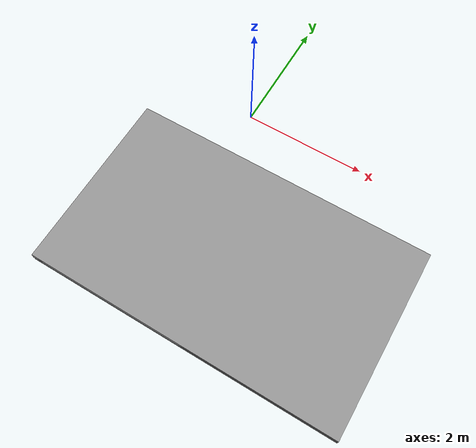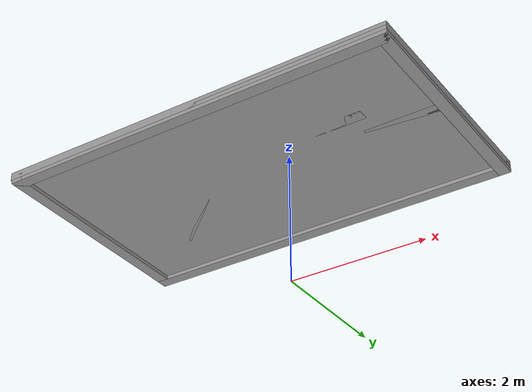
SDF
<?xml version='1.0'?>
<sdf version='1.6'>
  <model name='Untitled'>
    <pose frame=''>1.00628 -2.305 0 0 -0 0</pose>
    <link name='Floor_0'>
      <collision name='Floor_0_Collision'>
        <geometry>
          <box>
            <size>5.01745 3 0.1</size>
          </box>
        </geometry>
        <pose frame=''>0 0 0.05 0 -0 0</pose>
      </collision>
      <visual name='Floor_0_Visual'>
        <pose frame=''>0 0 0.05 0 -0 0</pose>
        <geometry>
          <box>
            <size>5.01745 3 0.1</size>
          </box>
        </geometry>
        <material>
          <script>
            <uri>file://media/materials/scripts/gazebo.material</uri>
            <name>Gazebo/Grey</name>
          </script>
          <ambient>1 1 1 1</ambient>
        </material>
        <meta>
          <layer>1</layer>
        </meta>
      </visual>
      <pose frame=''>0 0 0.05 0 -0 0</pose>
    </link>
    <link name='Wall_10'>
      <collision name='Wall_10_Collision'>
        <geometry>
          <box>
            <size>3 0.15 0.05</size>
          </box>
        </geometry>
        <pose frame=''>0 0 0.025 0 -0 0</pose>
      </collision>
      <visual name='Wall_10_Visual'>
        <pose frame=''>0 0 0.025 0 -0 0</pose>
        <geometry>
          <box>
            <size>3 0.15 0.05</size>
          </box>
        </geometry>
        <material>
          <script>
            <uri>file://media/materials/scripts/gazebo.material</uri>
            <name>Gazebo/Grey</name>
          </script>
          <ambient>0.180392 0.203922 0.211765 1</ambient>
        </material>
        <meta>
          <layer>0</layer>
        </meta>
      </visual>
      <pose frame=''>-2.41628 0 0 0 -0 -1.5708</pose>
    </link>
    <link name='Wall_12'>
      <collision name='Wall_12_Collision'>
        <geometry>
          <box>
            <size>5 0.15 0.05</size>
          </box>
        </geometry>
        <pose frame=''>0 0 0.025 0 -0 0</pose>
      </collision>
      <visual name='Wall_12_Visual'>
        <pose frame=''>0 0 0.025 0 -0 0</pose>
        <geometry>
          <box>
            <size>5 0.15 0.05</size>
          </box>
        </geometry>
        <material>
          <script>
            <uri>file://media/materials/scripts/gazebo.material</uri>
            <name>Gazebo/Grey</name>
          </script>
          <ambient>1 1 1 1</ambient>
        </material>
        <meta>
          <layer>1</layer>
        </meta>
      </visual>
      <pose frame=''>0.008724 1.425 0.05 0 -0 0</pose>
    </link>
    <link name='Wall_13'>
      <collision name='Wall_13_Collision'>
        <geometry>
          <box>
            <size>3 0.15 0.05</size>
          </box>
        </geometry>
        <pose frame=''>0 0 0.025 0 -0 0</pose>
      </collision>
      <visual name='Wall_13_Visual'>
        <pose frame=''>0 0 0.025 0 -0 0</pose>
        <geometry>
          <box>
            <size>3 0.15 0.05</size>
          </box>
        </geometry>
        <material>
          <script>
            <uri>file://media/materials/scripts/gazebo.material</uri>
            <name>Gazebo/Grey</name>
          </script>
          <ambient>1 1 1 1</ambient>
        </material>
        <meta>
          <layer>1</layer>
        </meta>
      </visual>
      <pose frame=''>2.43372 0 0.05 0 -0 -1.5708</pose>
    </link>
    <link name='Wall_14'>
      <collision name='Wall_14_Collision'>
        <geometry>
          <box>
            <size>5 0.15 0.05</size>
          </box>
        </geometry>
        <pose frame=''>0 0 0.025 0 -0 0</pose>
      </collision>
      <visual name='Wall_14_Visual'>
        <pose frame=''>0 0 0.025 0 -0 0</pose>
        <geometry>
          <box>
            <size>5 0.15 0.05</size>
          </box>
        </geometry>
        <material>
          <script>
            <uri>file://media/materials/scripts/gazebo.material</uri>
            <name>Gazebo/Grey</name>
          </script>
          <ambient>1 1 1 1</ambient>
        </material>
        <meta>
          <layer>1</layer>
        </meta>
      </visual>
      <pose frame=''>0.008724 -1.425 0.05 0 -0 3.14159</pose>
    </link>
    <link name='Wall_15'>
      <collision name='Wall_15_Collision'>
        <geometry>
          <box>
            <size>3 0.15 0.05</size>
          </box>
        </geometry>
        <pose frame=''>0 0 0.025 0 -0 0</pose>
      </collision>
      <visual name='Wall_15_Visual'>
        <pose frame=''>0 0 0.025 0 -0 0</pose>
        <geometry>
          <box>
            <size>3 0.15 0.05</size>
          </box>
        </geometry>
        <material>
          <script>
            <uri>file://media/materials/scripts/gazebo.material</uri>
            <name>Gazebo/Grey</name>
          </script>
          <ambient>1 1 1 1</ambient>
        </material>
        <meta>
          <layer>1</layer>
        </meta>
      </visual>
      <pose frame=''>-2.41628 0 0.05 0 -0 -1.5708</pose>
    </link>
    <link name='Wall_16'>
      <collision name='Wall_16_Collision'>
        <geometry>
          <box>
            <size>1.25 0.15 0.02</size>
          </box>
        </geometry>
        <pose frame=''>0 0 0.01 0 -0 0</pose>
      </collision>
      <visual name='Wall_16_Visual'>
        <pose frame=''>0 0 0.01 0 -0 0</pose>
        <geometry>
          <box>
            <size>1.25 0.15 0.02</size>
          </box>
        </geometry>
        <material>
          <script>
            <uri>file://media/materials/scripts/gazebo.material</uri>
            <name>Gazebo/Grey</name>
          </script>
          <ambient>1 1 1 1</ambient>
        </material>
        <meta>
          <layer>1</layer>
        </meta>
      </visual>
      <pose frame=''>-1.92978 0.49 0.05 0 -0 0.52343</pose>
    </link>
    <link name='Wall_17'>
      <collision name='Wall_17_Collision'>
        <geometry>
          <box>
            <size>1.75 0.15 0.02</size>
          </box>
        </geometry>
        <pose frame=''>0 0 0.01 0 -0 0</pose>
      </collision>
      <visual name='Wall_17_Visual'>
        <pose frame=''>0 0 0.01 0 -0 0</pose>
        <geometry>
          <box>
            <size>1.75 0.15 0.02</size>
          </box>
        </geometry>
        <material>
          <script>
            <uri>file://media/materials/scripts/gazebo.material</uri>
            <name>Gazebo/Grey</name>
          </script>
          <ambient>1 1 1 1</ambient>
        </material>
        <meta>
          <layer>1</layer>
        </meta>
      </visual>
      <pose frame=''>-0.887776 0.1995 0.05 0 -0 -0.785398</pose>
    </link>
    <link name='Wall_18'>
      <collision name='Wall_18_Collision'>
        <geometry>
          <box>
            <size>2 0.15 0.02</size>
          </box>
        </geometry>
        <pose frame=''>0 0 0.01 0 -0 0</pose>
      </collision>
      <visual name='Wall_18_Visual'>
        <pose frame=''>0 0 0.01 0 -0 0</pose>
        <geometry>
          <box>
            <size>2 0.15 0.02</size>
          </box>
        </geometry>
        <material>
          <script>
            <uri>file://media/materials/scripts/gazebo.material</uri>
            <name>Gazebo/Grey</name>
          </script>
          <ambient>1 1 1 1</ambient>
        </material>
        <meta>
          <layer>1</layer>
        </meta>
      </visual>
      <pose frame=''>0.602724 -0.366 0.05 0 -0 0</pose>
    </link>
    <link name='Wall_19'>
      <collision name='Wall_19_Collision'>
        <geometry>
          <box>
            <size>0.5 0.15 0.02</size>
          </box>
        </geometry>
        <pose frame=''>0 0 0.01 0 -0 0</pose>
      </collision>
      <visual name='Wall_19_Visual'>
        <pose frame=''>0 0 0.01 0 -0 0</pose>
        <geometry>
          <box>
            <size>0.5 0.15 0.02</size>
          </box>
        </geometry>
        <material>
          <script>
            <uri>file://media/materials/scripts/gazebo.material</uri>
            <name>Gazebo/Grey</name>
          </script>
          <ambient>1 1 1 1</ambient>
        </material>
        <meta>
          <layer>1</layer>
        </meta>
      </visual>
      <pose frame=''>1.52772 -0.191 0.05 0 -0 1.5708</pose>
    </link>
    <link name='Wall_21'>
      <collision name='Wall_21_Collision'>
        <geometry>
          <box>
            <size>1 0.15 0.02</size>
          </box>
        </geometry>
        <pose frame=''>0 0 0.01 0 -0 0</pose>
      </collision>
      <visual name='Wall_21_Visual'>
        <pose frame=''>0 0 0.01 0 -0 0</pose>
        <geometry>
          <box>
            <size>1 0.15 0.02</size>
          </box>
        </geometry>
        <material>
          <script>
            <uri>file://media/materials/scripts/gazebo.material</uri>
            <name>Gazebo/Grey</name>
          </script>
          <ambient>1 1 1 1</ambient>
        </material>
        <meta>
          <layer>1</layer>
        </meta>
      </visual>
      <pose frame=''>1.95272 -0.016 0.05 0 -0 0</pose>
    </link>
    <link name='Wall_6'>
      <collision name='Wall_6_Collision'>
        <geometry>
          <box>
            <size>5 0.15 0.05</size>
          </box>
        </geometry>
        <pose frame=''>0 0 0.025 0 -0 0</pose>
      </collision>
      <visual name='Wall_6_Visual'>
        <pose frame=''>0 0 0.025 0 -0 0</pose>
        <geometry>
          <box>
            <size>5 0.15 0.05</size>
          </box>
        </geometry>
        <material>
          <script>
            <uri>file://media/materials/scripts/gazebo.material</uri>
            <name>Gazebo/Grey</name>
          </script>
          <ambient>0.180392 0.203922 0.211765 1</ambient>
        </material>
        <meta>
          <layer>0</layer>
        </meta>
      </visual>
      <pose frame=''>0.008724 1.425 0 0 -0 0</pose>
    </link>
    <link name='Wall_7'>
      <collision name='Wall_7_Collision'>
        <geometry>
          <box>
            <size>3 0.15 0.05</size>
          </box>
        </geometry>
        <pose frame=''>0 0 0.025 0 -0 0</pose>
      </collision>
      <visual name='Wall_7_Visual'>
        <pose frame=''>0 0 0.025 0 -0 0</pose>
        <geometry>
          <box>
            <size>3 0.15 0.05</size>
          </box>
        </geometry>
        <material>
          <script>
            <uri>file://media/materials/scripts/gazebo.material</uri>
            <name>Gazebo/Grey</name>
          </script>
          <ambient>0.180392 0.203922 0.211765 1</ambient>
        </material>
        <meta>
          <layer>0</layer>
        </meta>
      </visual>
      <pose frame=''>2.43372 0 0 0 -0 -1.5708</pose>
    </link>
    <link name='Wall_8'>
      <collision name='Wall_8_Collision'>
        <geometry>
          <box>
            <size>5 0.15 0.05</size>
          </box>
        </geometry>
        <pose frame=''>0 0 0.025 0 -0 0</pose>
      </collision>
      <visual name='Wall_8_Visual'>
        <pose frame=''>0 0 0.025 0 -0 0</pose>
        <geometry>
          <box>
            <size>5 0.15 0.05</size>
          </box>
        </geometry>
        <material>
          <script>
            <uri>file://media/materials/scripts/gazebo.material</uri>
            <name>Gazebo/Grey</name>
          </script>
          <ambient>0.180392 0.203922 0.211765 1</ambient>
        </material>
        <meta>
          <layer>0</layer>
        </meta>
      </visual>
      <pose frame=''>0.008724 -1.425 0 0 -0 3.14159</pose>
    </link>
    <static>1</static>
  </model>
</sdf>
